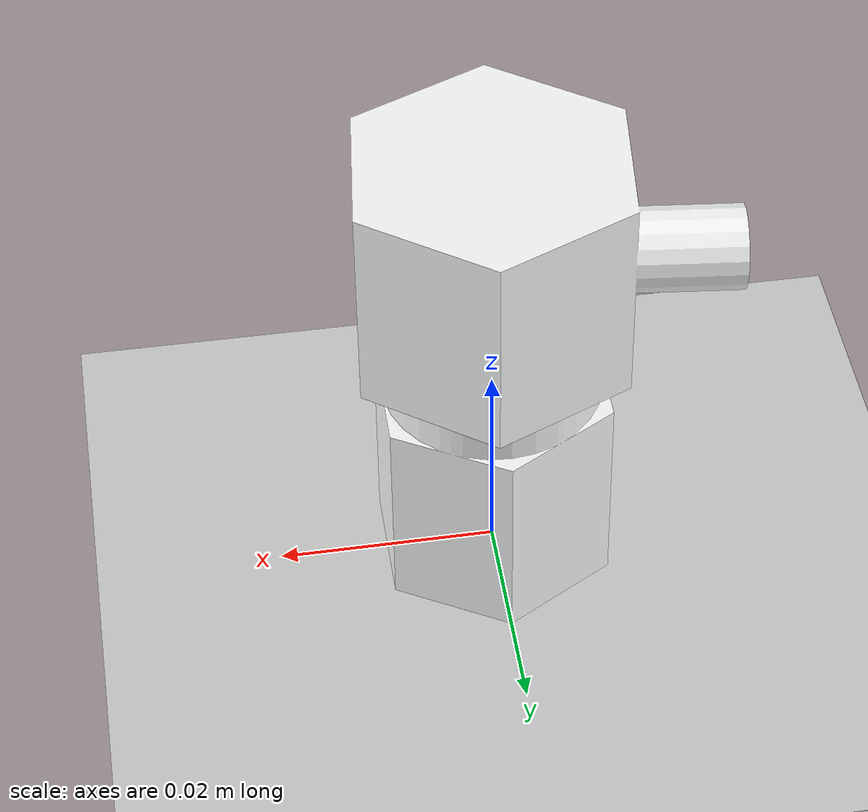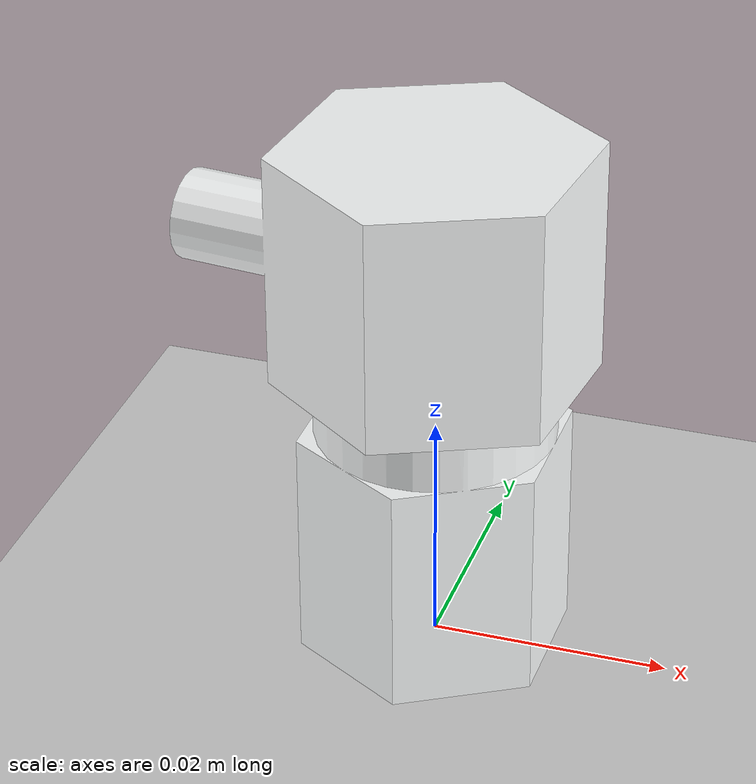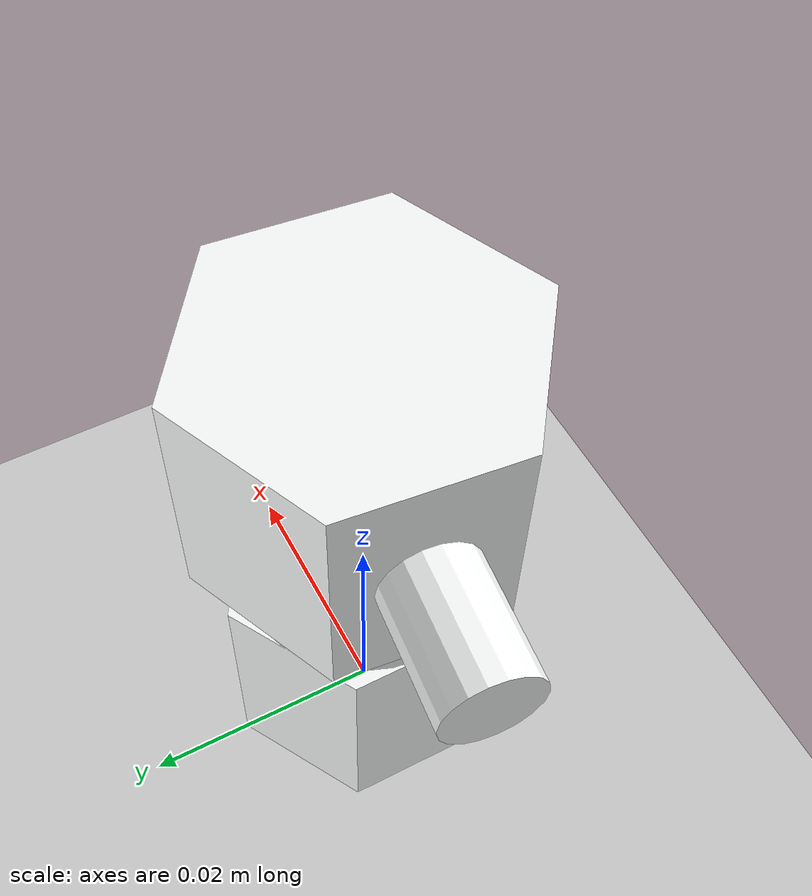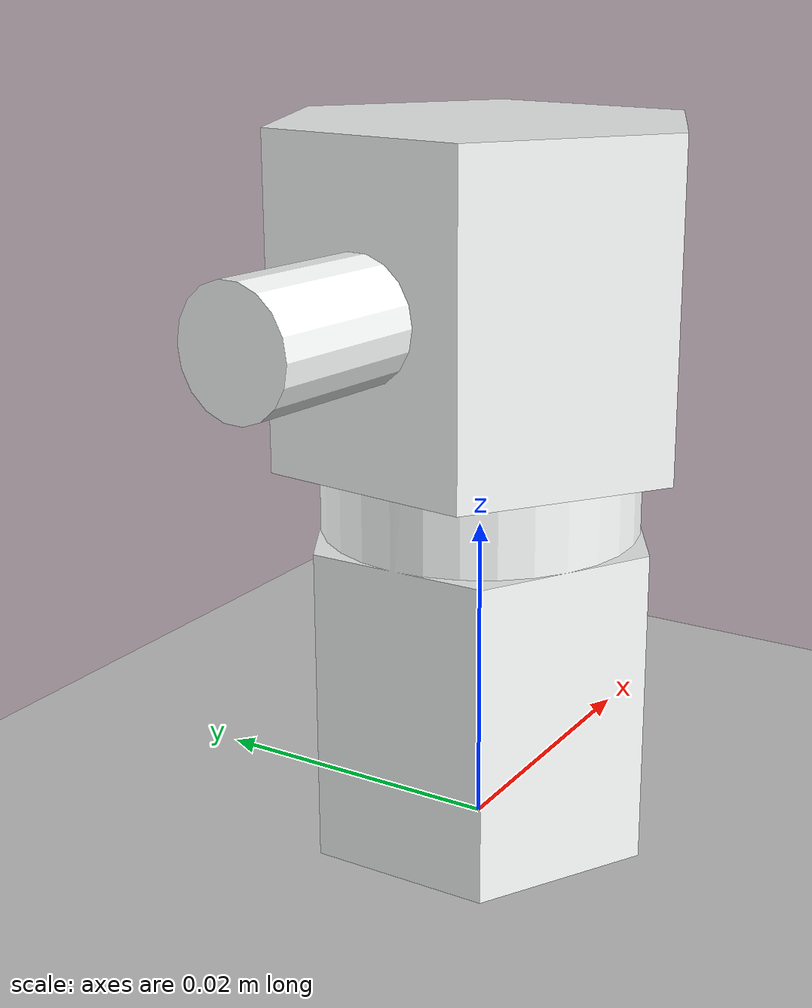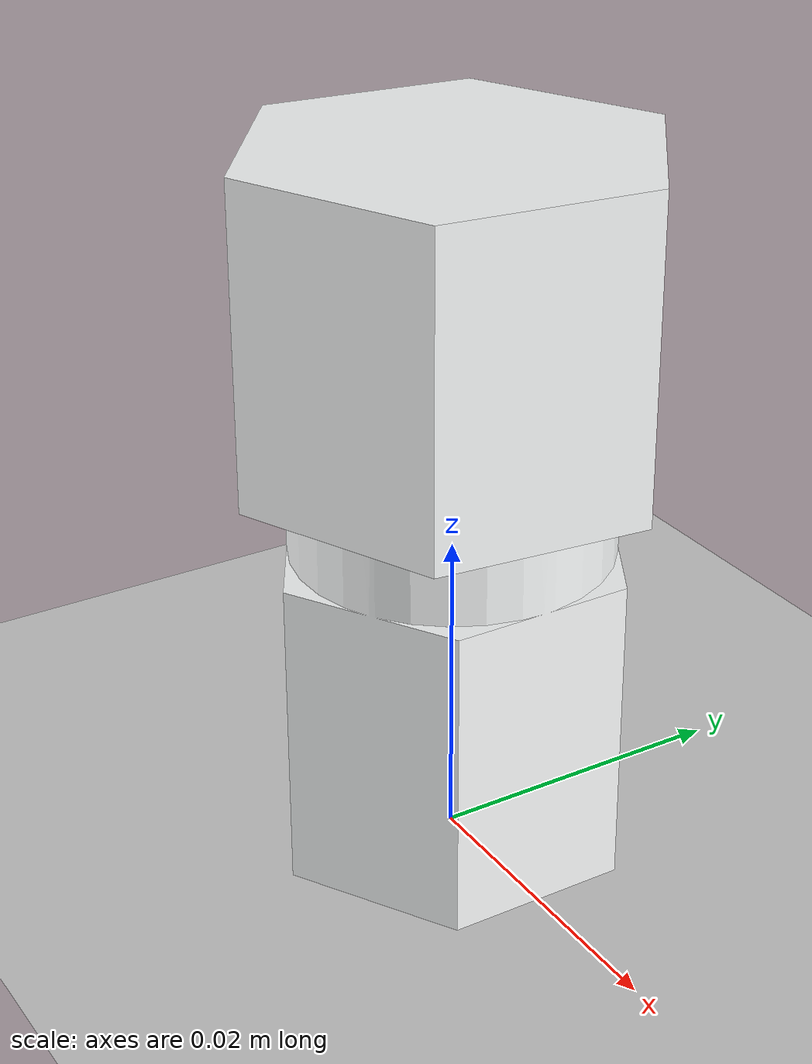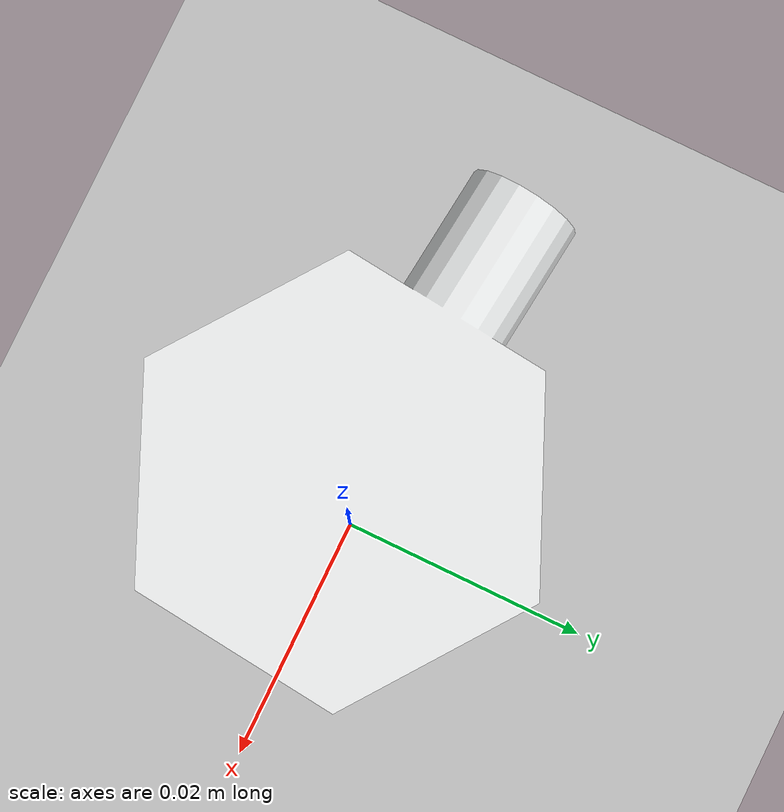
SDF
<sdf version='1.12'>
  <world name='world_demo'>
    <physics name='1ms' type='ignored'>
      <max_step_size>0.001</max_step_size>
      <real_time_factor>1</real_time_factor>
      <real_time_update_rate>1000</real_time_update_rate>
    </physics>
    <plugin name='gz::sim::systems::Physics' filename='gz-sim-physics-system'/>
    <plugin name='gz::sim::systems::UserCommands' filename='gz-sim-user-commands-system'/>
    <plugin name='gz::sim::systems::SceneBroadcaster' filename='gz-sim-scene-broadcaster-system'/>

    <plugin name='gazebo_ros2_control' filename='libgazebo_ros2_control.so'>
      <robotNamespace>/test_urdf</robotNamespace>
      <robotSimType>gazebo_ros_control/DefaultRobotHWSim</robotSimType>
    </plugin>

    <gravity>0 0 -9.8000000000000007</gravity>
    <magnetic_field>5.5644999999999998e-06 2.2875799999999999e-05 -4.2388400000000002e-05</magnetic_field>
    <atmosphere type='adiabatic'/>
    <scene>
      <ambient>0.400000006 0.400000006 0.400000006 1</ambient>
      <background>0.699999988 0.699999988 0.699999988 1</background>
      <shadows>true</shadows>
    </scene>
    <model name='ground_plane'>
      <static>true</static>
      <link name='link'>
        <collision name='collision'>
          <geometry>
            <plane>
              <normal>0 0 1</normal>
              <size>1 1</size>
            </plane>
          </geometry>
          <surface>
            <friction>
              <ode/>
            </friction>
            <bounce/>
            <contact/>
          </surface>
        </collision>
        <visual name='visual'>
          <geometry>
            <plane>
              <normal>0 0 1</normal>
              <size>100 100</size>
            </plane>
          </geometry>
          <material>
            <ambient>0.800000012 0.800000012 0.800000012 1</ambient>
            <diffuse>0.800000012 0.800000012 0.800000012 1</diffuse>
            <specular>0.800000012 0.800000012 0.800000012 1</specular>
          </material>
        </visual>
        <pose>0 0 0 0 0 0</pose>
        <inertial>
          <pose>0 0 0 0 0 0</pose>
          <mass>1</mass>
          <inertia>
            <ixx>1</ixx>
            <ixy>0</ixy>
            <ixz>0</ixz>
            <iyy>1</iyy>
            <iyz>0</iyz>
            <izz>1</izz>
          </inertia>
        </inertial>
        <enable_wind>false</enable_wind>
      </link>
      <pose>0 0 0 0 0 0</pose>
      <self_collide>false</self_collide>
    </model>
    <model name='test_urdf'>
      <link name='base_link'>
        <inertial>
          <pose>-1.7347234759768102e-18 -5.2041704279304197e-18 0.019511771286366102 0 0 0</pose>
          <mass>0.013211388537455199</mass>
          <inertia>
            <ixx>2.10789903136143e-06</ixx>
            <ixy>1.0587911840678799e-22</ixy>
            <ixz>-2.03993362626164e-22</ixz>
            <iyy>2.10789903136143e-06</iyy>
            <iyz>-6.7106263110886399e-22</iyz>
            <izz>6.9905944481874105e-07</izz>
          </inertia>
        </inertial>
        <collision name='base_link_collision'>
          <pose>0 0 0 0 0 0</pose>
          <geometry>
            <mesh>
              <scale>1 1 1</scale>
              <uri>file:///home/lqx/Desktop/test_urdf/meshes/base_link.STL</uri>
            </mesh>
          </geometry>
        </collision>
        <visual name='base_link_visual'>
          <pose>0 0 0 0 0 0</pose>
          <geometry>
            <mesh>
              <scale>1 1 1</scale>
              <uri>file:///home/lqx/Desktop/test_urdf/meshes/base_link.STL</uri>
            </mesh>
          </geometry>
          <material>
            <diffuse>0.990196109 1 1 1</diffuse>
            <ambient>0.990196109 1 1 1</ambient>
          </material>
        </visual>
        <pose>0 0 0 0 0 0</pose>
        <enable_wind>false</enable_wind>
      </link>
      <joint name='rotate_link' type='revolute'>
        <pose>0 0 0 0 0 0</pose>
        <parent>base_link</parent>
        <child>rotate</child>
        <axis>
          <xyz>0 0 1</xyz>
          <limit>
            <lower>-inf</lower>
            <upper>inf</upper>
            <effort>inf</effort>
            <velocity>inf</velocity>
            <stiffness>100000000</stiffness>
            <dissipation>1</dissipation>
          </limit>
          <dynamics>
            <spring_reference>0</spring_reference>
            <spring_stiffness>0</spring_stiffness>
            <damping>0</damping>
            <friction>0</friction>
          </dynamics>
        </axis>
      </joint>

      <trasmission name="rotate_link_transmission">
        <type>transmission_interface/SimpleTransmission</type>
        <joint name="rotate_link">
          <hardwareInterface>hardware_interface/PositionJointInterface</hardwareInterface>
        </joint>
        <actuator name="rotate_link_actuator">
          <hardwareInterface>hardware_interface/PositionJointInterface</hardwareInterface>
          <mechanicalReduction>1</mechanicalReduction>
        </actuator>
      </trasmission>

      <link name='rotate'>
        <pose>0 0 0.044999999999999998 0 0 3.0356381979560401</pose>
        <inertial>
          <pose>0.0014248340457469399 -1.7347234759768102e-18 -0.00776564858827069 0 0 0</pose>
          <mass>0.0052726587183722596</mass>
          <inertia>
            <ixx>4.2373222953954202e-07</ixx>
            <ixy>8.9335506155727001e-23</ixy>
            <ixz>1.6785930640137301e-08</ixz>
            <iyy>5.4086757547376203e-07</iyy>
            <iyz>4.1186451433736501e-23</iyz>
            <izz>6.1391974106002498e-07</izz>
          </inertia>
        </inertial>
        <collision name='rotate_collision'>
          <pose>0 0 0 0 0 0</pose>
          <geometry>
            <mesh>
              <scale>1 1 1</scale>
              <uri>file:///home/lqx/Desktop/test_urdf/meshes/rotate.STL</uri>
            </mesh>
          </geometry>
        </collision>
        <visual name='rotate_visual'>
          <pose>0 0 0 0 0 0</pose>
          <geometry>
            <mesh>
              <scale>1 1 1</scale>
              <uri>file:///home/lqx/Desktop/test_urdf/meshes/rotate.STL</uri>
            </mesh>
          </geometry>
          <material>
            <diffuse>0.990196109 1 1 1</diffuse>
            <ambient>0.990196109 1 1 1</ambient>
          </material>
        </visual>
        <enable_wind>false</enable_wind>
      </link>
      <pose>0 0 0 0 0 0</pose>
      <static>false</static>
      <self_collide>false</self_collide>
    </model>
    <light name='sun' type='directional'>
      <pose>0 0 10 0 0 0</pose>
      <cast_shadows>true</cast_shadows>
      <intensity>1</intensity>
      <direction>-0.5 0.10000000000000001 -0.90000000000000002</direction>
      <diffuse>0.800000012 0.800000012 0.800000012 1</diffuse>
      <specular>0.200000003 0.200000003 0.200000003 1</specular>
      <attenuation>
        <range>1000</range>
        <linear>0.01</linear>
        <constant>0.90000000000000002</constant>
        <quadratic>0.001</quadratic>
      </attenuation>
      <spot>
        <inner_angle>0</inner_angle>
        <outer_angle>0</outer_angle>
        <falloff>0</falloff>
      </spot>
    </light>
  </world>
</sdf>
